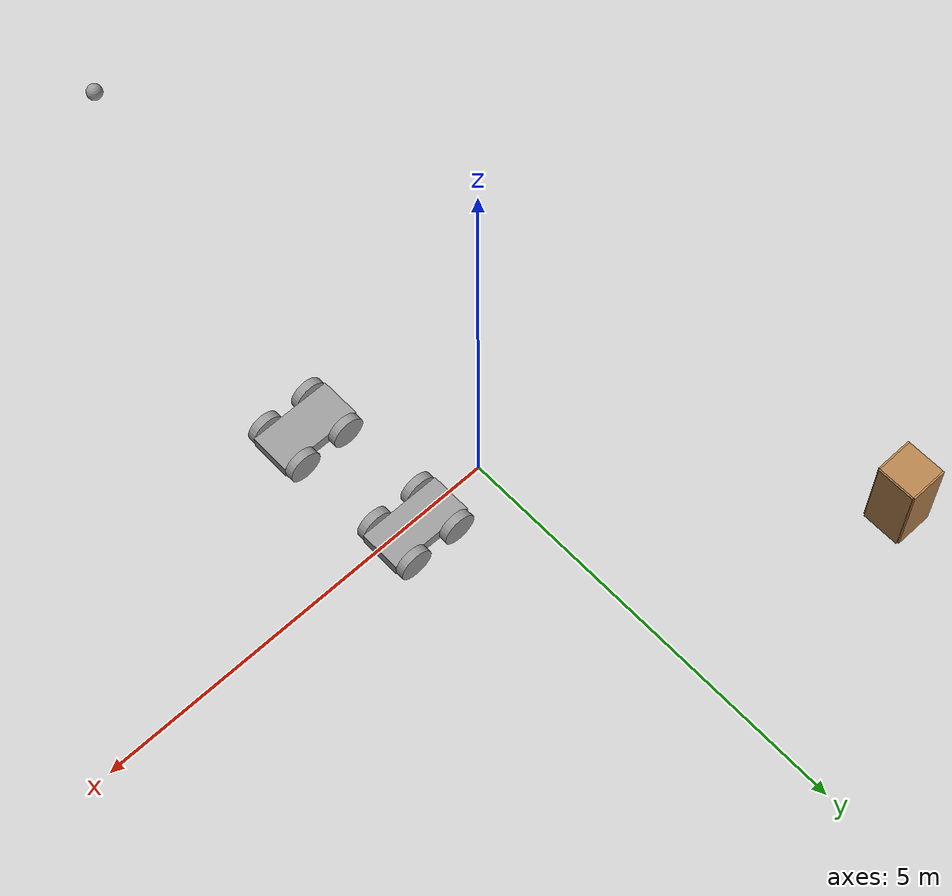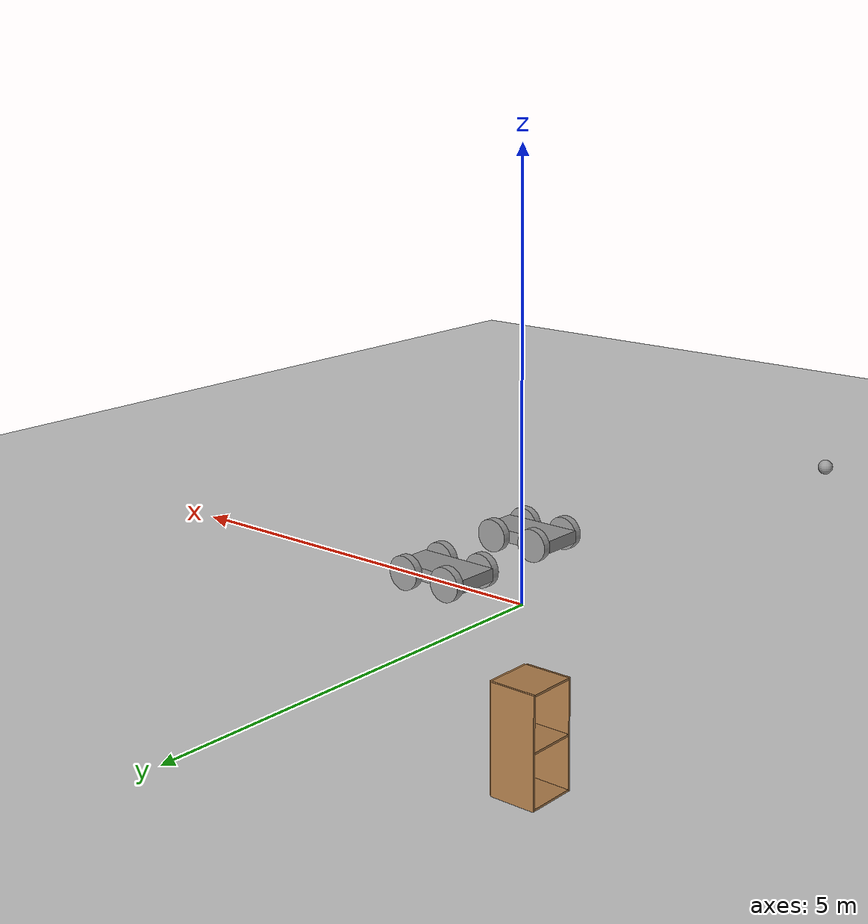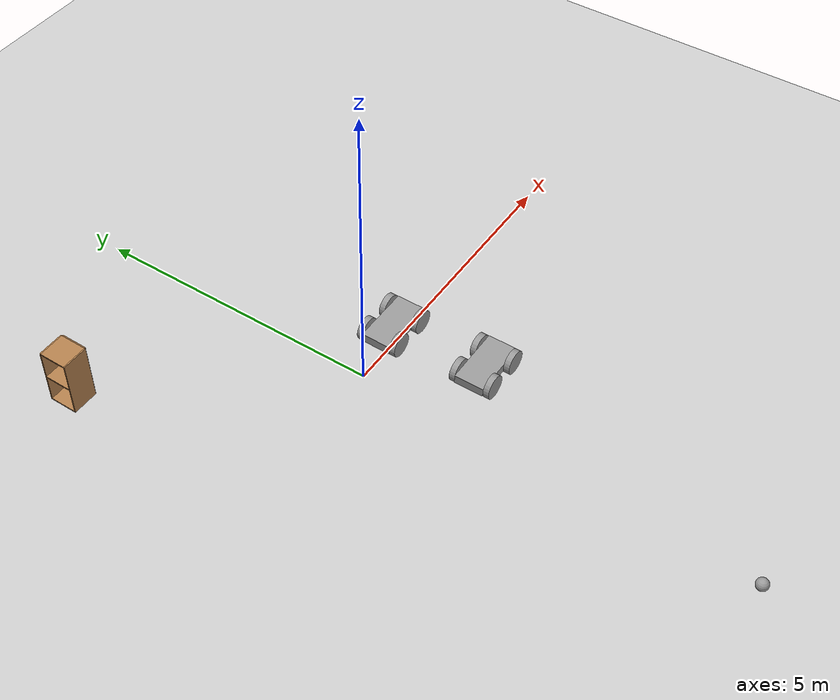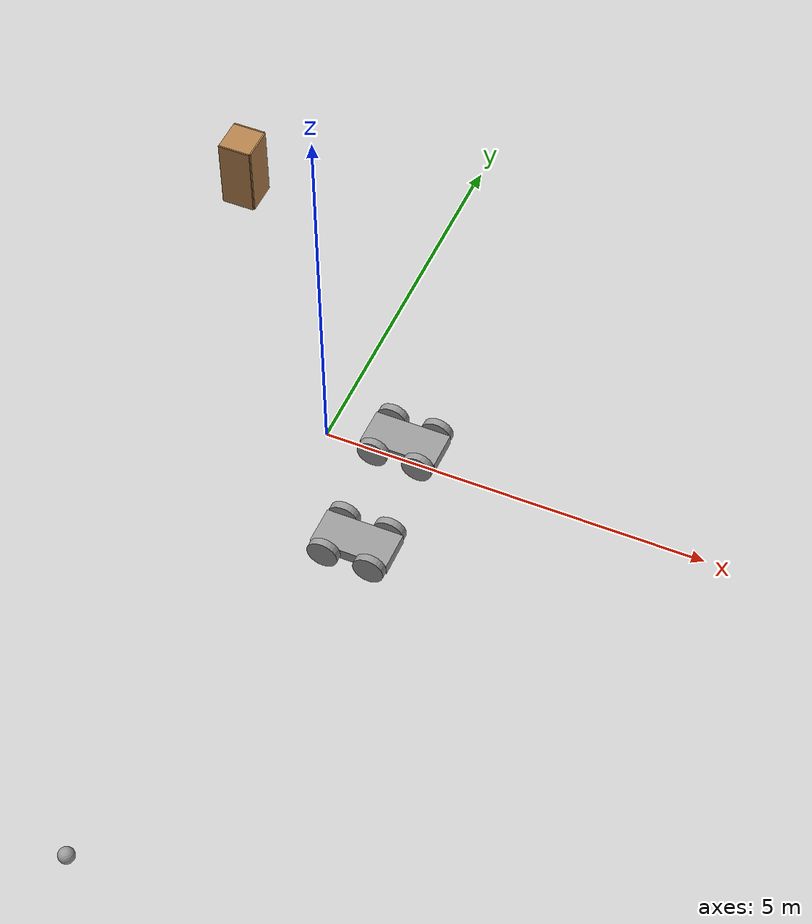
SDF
<sdf version="1.6">
 <world name="default">
  <model name="ground_plane">
   <static>1</static>
   <link name="link">
    <collision name="collision">
     <geometry><plane><normal>0 0 1</normal><size>100 100</size></plane></geometry>
     <surface>
      <contact><collide_bitmask>65535</collide_bitmask></contact>
      <friction><ode><mu>100</mu><mu2>50</mu2></ode></friction>
     </surface>
    </collision>
    <visual name="visual">
     <cast_shadows>0</cast_shadows>
     <geometry><plane><normal>0 0 1</normal><size>100 100</size></plane></geometry>
     <material>
      <script><uri>file://media/materials/scripts/gazebo.material</uri><name>Gazebo/Grey</name></script>
     </material>
    </visual>
   </link>
  </model>
  <model name="mobilerobot">
   <link name="link_0_clone">
    <pose>-0.073079 -0.805371 0.200133 1.5707 -0 0</pose>
    <inertial>
     <mass>1</mass>
     <inertia><ixx>0.145833</ixx><ixy>0</ixy><ixz>0</ixz><iyy>0.145833</iyy><iyz>0</iyz><izz>0.125</izz></inertia>
    </inertial>
    <visual name="visual">
     <geometry><cylinder><radius>0.2</radius><length>0.1</length></cylinder></geometry>
     <material>
      <lighting>1</lighting>
      <script><uri>file://media/materials/scripts/gazebo.material</uri><name>Gazebo/Grey</name></script>
      <shader type="pixel"><normal_map>__default__</normal_map></shader>
      <ambient>0.3 0.3 0.3 1</ambient>
      <diffuse>0.7 0.7 0.7 1</diffuse>
      <specular>0.01 0.01 0.01 1</specular>
      <emissive>0 0 0 1</emissive>
     </material>
    </visual>
    <collision name="collision">
     <geometry><cylinder><radius>0.2</radius><length>0.1</length></cylinder></geometry>
     <surface>
      <friction>
       <ode><mu>1</mu><mu2>1</mu2><fdir1>0 0 0</fdir1><slip1>0</slip1><slip2>0</slip2></ode>
       <torsional>
        <coefficient>1</coefficient>
        <patch_radius>0</patch_radius>
        <surface_radius>0</surface_radius>
        <use_patch_radius>1</use_patch_radius>
        <ode><slip>0</slip></ode>
       </torsional>
      </friction>
      <bounce><restitution_coefficient>0</restitution_coefficient><threshold>1e+06</threshold></bounce>
      <contact>
       <collide_without_contact>0</collide_without_contact>
       <collide_without_contact_bitmask>1</collide_without_contact_bitmask>
       <collide_bitmask>1</collide_bitmask>
       <ode>
        <soft_cfm>0</soft_cfm>
        <soft_erp>0.2</soft_erp>
        <kp>1e+13</kp>
        <kd>1</kd>
        <max_vel>0.01</max_vel>
        <min_depth>0</min_depth>
       </ode>
       <bullet>
        <split_impulse>1</split_impulse>
        <split_impulse_penetration_threshold>-0.01</split_impulse_penetration_threshold>
        <soft_cfm>0</soft_cfm>
        <soft_erp>0.2</soft_erp>
        <kp>1e+13</kp>
        <kd>1</kd>
       </bullet>
      </contact>
     </surface>
    </collision>
   </link>
   <link name="link_0_clone_0">
    <pose>0.526921 -0.805371 0.200133 1.5707 -0 0</pose>
    <inertial>
     <mass>1</mass>
     <inertia><ixx>0.145833</ixx><ixy>0</ixy><ixz>0</ixz><iyy>0.145833</iyy><iyz>0</iyz><izz>0.125</izz></inertia>
    </inertial>
    <visual name="visual">
     <geometry><cylinder><radius>0.2</radius><length>0.1</length></cylinder></geometry>
     <material>
      <lighting>1</lighting>
      <script><uri>file://media/materials/scripts/gazebo.material</uri><name>Gazebo/Grey</name></script>
      <shader type="pixel"><normal_map>__default__</normal_map></shader>
      <ambient>0.3 0.3 0.3 1</ambient>
      <diffuse>0.7 0.7 0.7 1</diffuse>
      <specular>0.01 0.01 0.01 1</specular>
      <emissive>0 0 0 1</emissive>
     </material>
    </visual>
    <collision name="collision">
     <geometry><cylinder><radius>0.2</radius><length>0.1</length></cylinder></geometry>
     <surface>
      <friction>
       <ode><mu>1</mu><mu2>1</mu2><fdir1>0 0 0</fdir1><slip1>0</slip1><slip2>0</slip2></ode>
       <torsional>
        <coefficient>1</coefficient>
        <patch_radius>0</patch_radius>
        <surface_radius>0</surface_radius>
        <use_patch_radius>1</use_patch_radius>
        <ode><slip>0</slip></ode>
       </torsional>
      </friction>
      <bounce><restitution_coefficient>0</restitution_coefficient><threshold>1e+06</threshold></bounce>
      <contact>
       <collide_without_contact>0</collide_without_contact>
       <collide_without_contact_bitmask>1</collide_without_contact_bitmask>
       <collide_bitmask>1</collide_bitmask>
       <ode>
        <soft_cfm>0</soft_cfm>
        <soft_erp>0.2</soft_erp>
        <kp>1e+13</kp>
        <kd>1</kd>
        <max_vel>0.01</max_vel>
        <min_depth>0</min_depth>
       </ode>
       <bullet>
        <split_impulse>1</split_impulse>
        <split_impulse_penetration_threshold>-0.01</split_impulse_penetration_threshold>
        <soft_cfm>0</soft_cfm>
        <soft_erp>0.2</soft_erp>
        <kp>1e+13</kp>
        <kd>1</kd>
       </bullet>
      </contact>
     </surface>
    </collision>
   </link>
   <link name="link_0_clone_1">
    <pose>0.526921 -0.205332 0.200133 1.5707 -0 0</pose>
    <inertial>
     <mass>1</mass>
     <inertia><ixx>0.145833</ixx><ixy>0</ixy><ixz>0</ixz><iyy>0.145833</iyy><iyz>0</iyz><izz>0.125</izz></inertia>
    </inertial>
    <visual name="visual">
     <geometry><cylinder><radius>0.2</radius><length>0.1</length></cylinder></geometry>
     <material>
      <lighting>1</lighting>
      <script><uri>file://media/materials/scripts/gazebo.material</uri><name>Gazebo/Grey</name></script>
      <shader type="pixel"><normal_map>__default__</normal_map></shader>
      <ambient>0.3 0.3 0.3 1</ambient>
      <diffuse>0.7 0.7 0.7 1</diffuse>
      <specular>0.01 0.01 0.01 1</specular>
      <emissive>0 0 0 1</emissive>
     </material>
    </visual>
    <collision name="collision">
     <geometry><cylinder><radius>0.2</radius><length>0.1</length></cylinder></geometry>
     <surface>
      <friction>
       <ode><mu>1</mu><mu2>1</mu2><fdir1>0 0 0</fdir1><slip1>0</slip1><slip2>0</slip2></ode>
       <torsional>
        <coefficient>1</coefficient>
        <patch_radius>0</patch_radius>
        <surface_radius>0</surface_radius>
        <use_patch_radius>1</use_patch_radius>
        <ode><slip>0</slip></ode>
       </torsional>
      </friction>
      <bounce><restitution_coefficient>0</restitution_coefficient><threshold>1e+06</threshold></bounce>
      <contact>
       <collide_without_contact>0</collide_without_contact>
       <collide_without_contact_bitmask>1</collide_without_contact_bitmask>
       <collide_bitmask>1</collide_bitmask>
       <ode>
        <soft_cfm>0</soft_cfm>
        <soft_erp>0.2</soft_erp>
        <kp>1e+13</kp>
        <kd>1</kd>
        <max_vel>0.01</max_vel>
        <min_depth>0</min_depth>
       </ode>
       <bullet>
        <split_impulse>1</split_impulse>
        <split_impulse_penetration_threshold>-0.01</split_impulse_penetration_threshold>
        <soft_cfm>0</soft_cfm>
        <soft_erp>0.2</soft_erp>
        <kp>1e+13</kp>
        <kd>1</kd>
       </bullet>
      </contact>
     </surface>
    </collision>
   </link>
   <link name="link_0_clone_1_clone">
    <pose>-0.073079 -0.205332 0.200133 1.5707 -0 0</pose>
    <inertial>
     <mass>1</mass>
     <inertia><ixx>0.145833</ixx><ixy>0</ixy><ixz>0</ixz><iyy>0.145833</iyy><iyz>0</iyz><izz>0.125</izz></inertia>
    </inertial>
    <visual name="visual">
     <geometry><cylinder><radius>0.2</radius><length>0.1</length></cylinder></geometry>
     <material>
      <lighting>1</lighting>
      <script><uri>file://media/materials/scripts/gazebo.material</uri><name>Gazebo/Grey</name></script>
      <shader type="pixel"><normal_map>__default__</normal_map></shader>
      <ambient>0.3 0.3 0.3 1</ambient>
      <diffuse>0.7 0.7 0.7 1</diffuse>
      <specular>0.01 0.01 0.01 1</specular>
      <emissive>0 0 0 1</emissive>
     </material>
    </visual>
    <collision name="collision">
     <geometry><cylinder><radius>0.2</radius><length>0.1</length></cylinder></geometry>
     <surface>
      <friction>
       <ode><mu>1</mu><mu2>1</mu2><fdir1>0 0 0</fdir1><slip1>0</slip1><slip2>0</slip2></ode>
       <torsional>
        <coefficient>1</coefficient>
        <patch_radius>0</patch_radius>
        <surface_radius>0</surface_radius>
        <use_patch_radius>1</use_patch_radius>
        <ode><slip>0</slip></ode>
       </torsional>
      </friction>
      <bounce><restitution_coefficient>0</restitution_coefficient><threshold>1e+06</threshold></bounce>
      <contact>
       <collide_without_contact>0</collide_without_contact>
       <collide_without_contact_bitmask>1</collide_without_contact_bitmask>
       <collide_bitmask>1</collide_bitmask>
       <ode>
        <soft_cfm>0</soft_cfm>
        <soft_erp>0.2</soft_erp>
        <kp>1e+13</kp>
        <kd>1</kd>
        <max_vel>0.01</max_vel>
        <min_depth>0</min_depth>
       </ode>
       <bullet>
        <split_impulse>1</split_impulse>
        <split_impulse_penetration_threshold>-0.01</split_impulse_penetration_threshold>
        <soft_cfm>0</soft_cfm>
        <soft_erp>0.2</soft_erp>
        <kp>1e+13</kp>
        <kd>1</kd>
       </bullet>
      </contact>
     </surface>
    </collision>
   </link>
   <link name="link_1">
    <pose>0.226921 -0.505351 0.200133 0 -0 0</pose>
    <inertial>
     <mass>1</mass>
     <inertia>
      <ixx>0.166667</ixx>
      <ixy>0</ixy>
      <ixz>0</ixz>
      <iyy>0.166667</iyy>
      <iyz>0</iyz>
      <izz>0.166667</izz>
     </inertia>
    </inertial>
    <visual name="visual">
     <geometry><box><size>1 0.5 0.15</size></box></geometry>
     <material>
      <lighting>1</lighting>
      <script><uri>file://media/materials/scripts/gazebo.material</uri><name>Gazebo/Grey</name></script>
      <shader type="pixel"><normal_map>__default__</normal_map></shader>
      <ambient>0.3 0.3 0.3 1</ambient>
      <diffuse>0.7 0.7 0.7 1</diffuse>
      <specular>0.01 0.01 0.01 1</specular>
      <emissive>0 0 0 1</emissive>
     </material>
    </visual>
    <collision name="collision">
     <geometry><box><size>1 0.5 0.15</size></box></geometry>
     <surface>
      <friction>
       <ode><mu>1</mu><mu2>1</mu2><fdir1>0 0 0</fdir1><slip1>0</slip1><slip2>0</slip2></ode>
       <torsional>
        <coefficient>1</coefficient>
        <patch_radius>0</patch_radius>
        <surface_radius>0</surface_radius>
        <use_patch_radius>1</use_patch_radius>
        <ode><slip>0</slip></ode>
       </torsional>
      </friction>
      <bounce><restitution_coefficient>0</restitution_coefficient><threshold>1e+06</threshold></bounce>
      <contact>
       <collide_without_contact>0</collide_without_contact>
       <collide_without_contact_bitmask>1</collide_without_contact_bitmask>
       <collide_bitmask>1</collide_bitmask>
       <ode>
        <soft_cfm>0</soft_cfm>
        <soft_erp>0.2</soft_erp>
        <kp>1e+13</kp>
        <kd>1</kd>
        <max_vel>0.01</max_vel>
        <min_depth>0</min_depth>
       </ode>
       <bullet>
        <split_impulse>1</split_impulse>
        <split_impulse_penetration_threshold>-0.01</split_impulse_penetration_threshold>
        <soft_cfm>0</soft_cfm>
        <soft_erp>0.2</soft_erp>
        <kp>1e+13</kp>
        <kd>1</kd>
       </bullet>
      </contact>
     </surface>
    </collision>
   </link>
   <joint name="link_1_JOINT_5" type="revolute">
    <parent>link_1</parent>
    <child>link_0_clone</child>
    <axis>
     <xyz>0 0 1</xyz>
     <use_parent_model_frame>0</use_parent_model_frame>
     <limit>
      <lower>-1.79769e+308</lower>
      <upper>1.79769e+308</upper>
      <effort>-1</effort>
      <velocity>-1</velocity>
     </limit>
     <dynamics>
      <spring_reference>0</spring_reference>
      <spring_stiffness>0</spring_stiffness>
      <damping>0</damping>
     </dynamics>
    </axis>
    <physics>
     <ode><limit><cfm>0</cfm><erp>0.2</erp></limit><suspension><cfm>0</cfm><erp>0.2</erp></suspension></ode>
    </physics>
   </joint>
   <joint name="link_1_JOINT_6" type="revolute">
    <parent>link_1</parent>
    <child>link_0_clone_0</child>
    <axis>
     <xyz>0 0 1</xyz>
     <use_parent_model_frame>0</use_parent_model_frame>
     <limit>
      <lower>-1.79769e+308</lower>
      <upper>1.79769e+308</upper>
      <effort>-1</effort>
      <velocity>-1</velocity>
     </limit>
     <dynamics>
      <spring_reference>0</spring_reference>
      <spring_stiffness>0</spring_stiffness>
      <damping>0</damping>
     </dynamics>
    </axis>
    <physics>
     <ode><limit><cfm>0</cfm><erp>0.2</erp></limit><suspension><cfm>0</cfm><erp>0.2</erp></suspension></ode>
    </physics>
   </joint>
   <joint name="link_1_JOINT_7" type="revolute">
    <parent>link_1</parent>
    <child>link_0_clone_1</child>
    <axis>
     <xyz>0 0 1</xyz>
     <use_parent_model_frame>0</use_parent_model_frame>
     <limit>
      <lower>-1.79769e+308</lower>
      <upper>1.79769e+308</upper>
      <effort>-1</effort>
      <velocity>-1</velocity>
     </limit>
     <dynamics>
      <spring_reference>0</spring_reference>
      <spring_stiffness>0</spring_stiffness>
      <damping>0</damping>
     </dynamics>
    </axis>
    <physics>
     <ode><limit><cfm>0</cfm><erp>0.2</erp></limit><suspension><cfm>0</cfm><erp>0.2</erp></suspension></ode>
    </physics>
   </joint>
   <joint name="link_1_JOINT_9" type="revolute">
    <parent>link_1</parent>
    <child>link_0_clone_1_clone</child>
    <axis>
     <xyz>0 0 1</xyz>
     <use_parent_model_frame>0</use_parent_model_frame>
     <limit>
      <lower>-1.79769e+308</lower>
      <upper>1.79769e+308</upper>
      <effort>-1</effort>
      <velocity>-1</velocity>
     </limit>
     <dynamics>
      <spring_reference>0</spring_reference>
      <spring_stiffness>0</spring_stiffness>
      <damping>0</damping>
     </dynamics>
    </axis>
    <physics>
     <ode><limit><cfm>0</cfm><erp>0.2</erp></limit><suspension><cfm>0</cfm><erp>0.2</erp></suspension></ode>
    </physics>
   </joint>
   <static>0</static>
   <pose>0.872249 -1.01321 -5.5e-05 -0 -0.000999 0.000954</pose>
  </model>
  <model name="mobilerobot_0">
   <link name="link_0_clone">
    <pose>-0.073079 -0.805371 0.200133 1.5707 -0 0</pose>
    <inertial>
     <mass>1</mass>
     <inertia><ixx>0.145833</ixx><ixy>0</ixy><ixz>0</ixz><iyy>0.145833</iyy><iyz>0</iyz><izz>0.125</izz></inertia>
    </inertial>
    <visual name="visual">
     <geometry><cylinder><radius>0.2</radius><length>0.1</length></cylinder></geometry>
     <material>
      <lighting>1</lighting>
      <script><uri>file://media/materials/scripts/gazebo.material</uri><name>Gazebo/Grey</name></script>
      <shader type="pixel"><normal_map>__default__</normal_map></shader>
      <ambient>0.3 0.3 0.3 1</ambient>
      <diffuse>0.7 0.7 0.7 1</diffuse>
      <specular>0.01 0.01 0.01 1</specular>
      <emissive>0 0 0 1</emissive>
     </material>
    </visual>
    <collision name="collision">
     <geometry><cylinder><radius>0.2</radius><length>0.1</length></cylinder></geometry>
     <surface>
      <friction>
       <ode><mu>1</mu><mu2>1</mu2><fdir1>0 0 0</fdir1><slip1>0</slip1><slip2>0</slip2></ode>
       <torsional>
        <coefficient>1</coefficient>
        <patch_radius>0</patch_radius>
        <surface_radius>0</surface_radius>
        <use_patch_radius>1</use_patch_radius>
        <ode><slip>0</slip></ode>
       </torsional>
      </friction>
      <bounce><restitution_coefficient>0</restitution_coefficient><threshold>1e+06</threshold></bounce>
      <contact>
       <collide_without_contact>0</collide_without_contact>
       <collide_without_contact_bitmask>1</collide_without_contact_bitmask>
       <collide_bitmask>1</collide_bitmask>
       <ode>
        <soft_cfm>0</soft_cfm>
        <soft_erp>0.2</soft_erp>
        <kp>1e+13</kp>
        <kd>1</kd>
        <max_vel>0.01</max_vel>
        <min_depth>0</min_depth>
       </ode>
       <bullet>
        <split_impulse>1</split_impulse>
        <split_impulse_penetration_threshold>-0.01</split_impulse_penetration_threshold>
        <soft_cfm>0</soft_cfm>
        <soft_erp>0.2</soft_erp>
        <kp>1e+13</kp>
        <kd>1</kd>
       </bullet>
      </contact>
     </surface>
    </collision>
   </link>
   <link name="link_0_clone_0">
    <pose>0.526921 -0.805371 0.200133 1.5707 -0 0</pose>
    <inertial>
     <mass>1</mass>
     <inertia><ixx>0.145833</ixx><ixy>0</ixy><ixz>0</ixz><iyy>0.145833</iyy><iyz>0</iyz><izz>0.125</izz></inertia>
    </inertial>
    <visual name="visual">
     <geometry><cylinder><radius>0.2</radius><length>0.1</length></cylinder></geometry>
     <material>
      <lighting>1</lighting>
      <script><uri>file://media/materials/scripts/gazebo.material</uri><name>Gazebo/Grey</name></script>
      <shader type="pixel"><normal_map>__default__</normal_map></shader>
      <ambient>0.3 0.3 0.3 1</ambient>
      <diffuse>0.7 0.7 0.7 1</diffuse>
      <specular>0.01 0.01 0.01 1</specular>
      <emissive>0 0 0 1</emissive>
     </material>
    </visual>
    <collision name="collision">
     <geometry><cylinder><radius>0.2</radius><length>0.1</length></cylinder></geometry>
     <surface>
      <friction>
       <ode><mu>1</mu><mu2>1</mu2><fdir1>0 0 0</fdir1><slip1>0</slip1><slip2>0</slip2></ode>
       <torsional>
        <coefficient>1</coefficient>
        <patch_radius>0</patch_radius>
        <surface_radius>0</surface_radius>
        <use_patch_radius>1</use_patch_radius>
        <ode><slip>0</slip></ode>
       </torsional>
      </friction>
      <bounce><restitution_coefficient>0</restitution_coefficient><threshold>1e+06</threshold></bounce>
      <contact>
       <collide_without_contact>0</collide_without_contact>
       <collide_without_contact_bitmask>1</collide_without_contact_bitmask>
       <collide_bitmask>1</collide_bitmask>
       <ode>
        <soft_cfm>0</soft_cfm>
        <soft_erp>0.2</soft_erp>
        <kp>1e+13</kp>
        <kd>1</kd>
        <max_vel>0.01</max_vel>
        <min_depth>0</min_depth>
       </ode>
       <bullet>
        <split_impulse>1</split_impulse>
        <split_impulse_penetration_threshold>-0.01</split_impulse_penetration_threshold>
        <soft_cfm>0</soft_cfm>
        <soft_erp>0.2</soft_erp>
        <kp>1e+13</kp>
        <kd>1</kd>
       </bullet>
      </contact>
     </surface>
    </collision>
   </link>
   <link name="link_0_clone_1">
    <pose>0.526921 -0.205332 0.200133 1.5707 -0 0</pose>
    <inertial>
     <mass>1</mass>
     <inertia><ixx>0.145833</ixx><ixy>0</ixy><ixz>0</ixz><iyy>0.145833</iyy><iyz>0</iyz><izz>0.125</izz></inertia>
    </inertial>
    <visual name="visual">
     <geometry><cylinder><radius>0.2</radius><length>0.1</length></cylinder></geometry>
     <material>
      <lighting>1</lighting>
      <script><uri>file://media/materials/scripts/gazebo.material</uri><name>Gazebo/Grey</name></script>
      <shader type="pixel"><normal_map>__default__</normal_map></shader>
      <ambient>0.3 0.3 0.3 1</ambient>
      <diffuse>0.7 0.7 0.7 1</diffuse>
      <specular>0.01 0.01 0.01 1</specular>
      <emissive>0 0 0 1</emissive>
     </material>
    </visual>
    <collision name="collision">
     <geometry><cylinder><radius>0.2</radius><length>0.1</length></cylinder></geometry>
     <surface>
      <friction>
       <ode><mu>1</mu><mu2>1</mu2><fdir1>0 0 0</fdir1><slip1>0</slip1><slip2>0</slip2></ode>
       <torsional>
        <coefficient>1</coefficient>
        <patch_radius>0</patch_radius>
        <surface_radius>0</surface_radius>
        <use_patch_radius>1</use_patch_radius>
        <ode><slip>0</slip></ode>
       </torsional>
      </friction>
      <bounce><restitution_coefficient>0</restitution_coefficient><threshold>1e+06</threshold></bounce>
      <contact>
       <collide_without_contact>0</collide_without_contact>
       <collide_without_contact_bitmask>1</collide_without_contact_bitmask>
       <collide_bitmask>1</collide_bitmask>
       <ode>
        <soft_cfm>0</soft_cfm>
        <soft_erp>0.2</soft_erp>
        <kp>1e+13</kp>
        <kd>1</kd>
        <max_vel>0.01</max_vel>
        <min_depth>0</min_depth>
       </ode>
       <bullet>
        <split_impulse>1</split_impulse>
        <split_impulse_penetration_threshold>-0.01</split_impulse_penetration_threshold>
        <soft_cfm>0</soft_cfm>
        <soft_erp>0.2</soft_erp>
        <kp>1e+13</kp>
        <kd>1</kd>
       </bullet>
      </contact>
     </surface>
    </collision>
   </link>
   <link name="link_0_clone_1_clone">
    <pose>-0.073079 -0.205332 0.200133 1.5707 -0 0</pose>
    <inertial>
     <mass>1</mass>
     <inertia><ixx>0.145833</ixx><ixy>0</ixy><ixz>0</ixz><iyy>0.145833</iyy><iyz>0</iyz><izz>0.125</izz></inertia>
    </inertial>
    <visual name="visual">
     <geometry><cylinder><radius>0.2</radius><length>0.1</length></cylinder></geometry>
     <material>
      <lighting>1</lighting>
      <script><uri>file://media/materials/scripts/gazebo.material</uri><name>Gazebo/Grey</name></script>
      <shader type="pixel"><normal_map>__default__</normal_map></shader>
      <ambient>0.3 0.3 0.3 1</ambient>
      <diffuse>0.7 0.7 0.7 1</diffuse>
      <specular>0.01 0.01 0.01 1</specular>
      <emissive>0 0 0 1</emissive>
     </material>
    </visual>
    <collision name="collision">
     <geometry><cylinder><radius>0.2</radius><length>0.1</length></cylinder></geometry>
     <surface>
      <friction>
       <ode><mu>1</mu><mu2>1</mu2><fdir1>0 0 0</fdir1><slip1>0</slip1><slip2>0</slip2></ode>
       <torsional>
        <coefficient>1</coefficient>
        <patch_radius>0</patch_radius>
        <surface_radius>0</surface_radius>
        <use_patch_radius>1</use_patch_radius>
        <ode><slip>0</slip></ode>
       </torsional>
      </friction>
      <bounce><restitution_coefficient>0</restitution_coefficient><threshold>1e+06</threshold></bounce>
      <contact>
       <collide_without_contact>0</collide_without_contact>
       <collide_without_contact_bitmask>1</collide_without_contact_bitmask>
       <collide_bitmask>1</collide_bitmask>
       <ode>
        <soft_cfm>0</soft_cfm>
        <soft_erp>0.2</soft_erp>
        <kp>1e+13</kp>
        <kd>1</kd>
        <max_vel>0.01</max_vel>
        <min_depth>0</min_depth>
       </ode>
       <bullet>
        <split_impulse>1</split_impulse>
        <split_impulse_penetration_threshold>-0.01</split_impulse_penetration_threshold>
        <soft_cfm>0</soft_cfm>
        <soft_erp>0.2</soft_erp>
        <kp>1e+13</kp>
        <kd>1</kd>
       </bullet>
      </contact>
     </surface>
    </collision>
   </link>
   <link name="link_1">
    <pose>0.226921 -0.505351 0.200133 0 -0 0</pose>
    <inertial>
     <mass>1</mass>
     <inertia>
      <ixx>0.166667</ixx>
      <ixy>0</ixy>
      <ixz>0</ixz>
      <iyy>0.166667</iyy>
      <iyz>0</iyz>
      <izz>0.166667</izz>
     </inertia>
    </inertial>
    <visual name="visual">
     <geometry><box><size>1 0.5 0.15</size></box></geometry>
     <material>
      <lighting>1</lighting>
      <script><uri>file://media/materials/scripts/gazebo.material</uri><name>Gazebo/Grey</name></script>
      <shader type="pixel"><normal_map>__default__</normal_map></shader>
      <ambient>0.3 0.3 0.3 1</ambient>
      <diffuse>0.7 0.7 0.7 1</diffuse>
      <specular>0.01 0.01 0.01 1</specular>
      <emissive>0 0 0 1</emissive>
     </material>
    </visual>
    <collision name="collision">
     <geometry><box><size>1 0.5 0.15</size></box></geometry>
     <surface>
      <friction>
       <ode><mu>1</mu><mu2>1</mu2><fdir1>0 0 0</fdir1><slip1>0</slip1><slip2>0</slip2></ode>
       <torsional>
        <coefficient>1</coefficient>
        <patch_radius>0</patch_radius>
        <surface_radius>0</surface_radius>
        <use_patch_radius>1</use_patch_radius>
        <ode><slip>0</slip></ode>
       </torsional>
      </friction>
      <bounce><restitution_coefficient>0</restitution_coefficient><threshold>1e+06</threshold></bounce>
      <contact>
       <collide_without_contact>0</collide_without_contact>
       <collide_without_contact_bitmask>1</collide_without_contact_bitmask>
       <collide_bitmask>1</collide_bitmask>
       <ode>
        <soft_cfm>0</soft_cfm>
        <soft_erp>0.2</soft_erp>
        <kp>1e+13</kp>
        <kd>1</kd>
        <max_vel>0.01</max_vel>
        <min_depth>0</min_depth>
       </ode>
       <bullet>
        <split_impulse>1</split_impulse>
        <split_impulse_penetration_threshold>-0.01</split_impulse_penetration_threshold>
        <soft_cfm>0</soft_cfm>
        <soft_erp>0.2</soft_erp>
        <kp>1e+13</kp>
        <kd>1</kd>
       </bullet>
      </contact>
     </surface>
    </collision>
   </link>
   <joint name="link_1_JOINT_5" type="revolute">
    <parent>link_1</parent>
    <child>link_0_clone</child>
    <axis>
     <xyz>0 0 1</xyz>
     <use_parent_model_frame>0</use_parent_model_frame>
     <limit>
      <lower>-1.79769e+308</lower>
      <upper>1.79769e+308</upper>
      <effort>-1</effort>
      <velocity>-1</velocity>
     </limit>
     <dynamics>
      <spring_reference>0</spring_reference>
      <spring_stiffness>0</spring_stiffness>
      <damping>0</damping>
     </dynamics>
    </axis>
    <physics>
     <ode><limit><cfm>0</cfm><erp>0.2</erp></limit><suspension><cfm>0</cfm><erp>0.2</erp></suspension></ode>
    </physics>
   </joint>
   <joint name="link_1_JOINT_6" type="revolute">
    <parent>link_1</parent>
    <child>link_0_clone_0</child>
    <axis>
     <xyz>0 0 1</xyz>
     <use_parent_model_frame>0</use_parent_model_frame>
     <limit>
      <lower>-1.79769e+308</lower>
      <upper>1.79769e+308</upper>
      <effort>-1</effort>
      <velocity>-1</velocity>
     </limit>
     <dynamics>
      <spring_reference>0</spring_reference>
      <spring_stiffness>0</spring_stiffness>
      <damping>0</damping>
     </dynamics>
    </axis>
    <physics>
     <ode><limit><cfm>0</cfm><erp>0.2</erp></limit><suspension><cfm>0</cfm><erp>0.2</erp></suspension></ode>
    </physics>
   </joint>
   <joint name="link_1_JOINT_7" type="revolute">
    <parent>link_1</parent>
    <child>link_0_clone_1</child>
    <axis>
     <xyz>0 0 1</xyz>
     <use_parent_model_frame>0</use_parent_model_frame>
     <limit>
      <lower>-1.79769e+308</lower>
      <upper>1.79769e+308</upper>
      <effort>-1</effort>
      <velocity>-1</velocity>
     </limit>
     <dynamics>
      <spring_reference>0</spring_reference>
      <spring_stiffness>0</spring_stiffness>
      <damping>0</damping>
     </dynamics>
    </axis>
    <physics>
     <ode><limit><cfm>0</cfm><erp>0.2</erp></limit><suspension><cfm>0</cfm><erp>0.2</erp></suspension></ode>
    </physics>
   </joint>
   <joint name="link_1_JOINT_9" type="revolute">
    <parent>link_1</parent>
    <child>link_0_clone_1_clone</child>
    <axis>
     <xyz>0 0 1</xyz>
     <use_parent_model_frame>0</use_parent_model_frame>
     <limit>
      <lower>-1.79769e+308</lower>
      <upper>1.79769e+308</upper>
      <effort>-1</effort>
      <velocity>-1</velocity>
     </limit>
     <dynamics>
      <spring_reference>0</spring_reference>
      <spring_stiffness>0</spring_stiffness>
      <damping>0</damping>
     </dynamics>
    </axis>
    <physics>
     <ode><limit><cfm>0</cfm><erp>0.2</erp></limit><suspension><cfm>0</cfm><erp>0.2</erp></suspension></ode>
    </physics>
   </joint>
   <static>0</static>
   <pose>0.791699 0.628682 0.000193 -3e-06 -0.004379 -0.004846</pose>
  </model>
  <model name="cabinet">
   <static>1</static>
   <link name="cabinet_bottom_plate">
    <inertial>
     <pose>0 0 -1 0 -0 0</pose>
     <inertia><ixx>2.05</ixx><ixy>0</ixy><ixz>0</ixz><iyy>2.05</iyy><iyz>0</iyz><izz>2.05</izz></inertia>
     <mass>25</mass>
    </inertial>
    <collision name="cabinet_bottom_plate_geom">
     <pose>0 0 0.01 0 -0 0</pose>
     <geometry><box><size>0.45 0.45 0.02</size></box></geometry>
    </collision>
    <visual name="cabinet_bottom_plate_geom_visual">
     <pose>0 0 0.01 0 -0 0</pose>
     <geometry><box><size>0.45 0.45 0.02</size></box></geometry>
     <material>
      <script><uri>file://media/materials/scripts/gazebo.material</uri><name>Gazebo/Wood</name></script>
     </material>
    </visual>
    <collision name="cabinet_bottom_plate_geom_cabinet_back_plate">
     <pose>0.235 0 0.51 0 -0 0</pose>
     <geometry><box><size>0.02 0.45 1.02</size></box></geometry>
    </collision>
    <visual name="cabinet_bottom_plate_geom_cabinet_back_plate_visual">
     <pose>0.235 0 0.51 0 -0 0</pose>
     <geometry><box><size>0.02 0.45 1.02</size></box></geometry>
     <material>
      <script><uri>file://media/materials/scripts/gazebo.material</uri><name>Gazebo/Wood</name></script>
     </material>
    </visual>
    <collision name="cabinet_bottom_plate_geom_cabinet_left_plate">
     <pose>0 0.235 0.51 0 -0 0</pose>
     <geometry><box><size>0.45 0.02 1.02</size></box></geometry>
    </collision>
    <visual name="cabinet_bottom_plate_geom_cabinet_left_plate_visual">
     <pose>0 0.235 0.51 0 -0 0</pose>
     <geometry><box><size>0.45 0.02 1.02</size></box></geometry>
     <material>
      <script><uri>file://media/materials/scripts/gazebo.material</uri><name>Gazebo/Wood</name></script>
     </material>
    </visual>
    <collision name="cabinet_bottom_plate_geom_cabinet_middle_plate">
     <pose>0 0 0.51 0 -0 0</pose>
     <geometry><box><size>0.45 0.45 0.02</size></box></geometry>
    </collision>
    <visual name="cabinet_bottom_plate_geom_cabinet_middle_plate_visual">
     <pose>0 0 0.51 0 -0 0</pose>
     <geometry><box><size>0.45 0.45 0.02</size></box></geometry>
     <material>
      <script><uri>file://media/materials/scripts/gazebo.material</uri><name>Gazebo/Wood</name></script>
     </material>
    </visual>
    <collision name="cabinet_bottom_plate_geom_cabinet_right_plate">
     <pose>0 -0.235 0.51 0 -0 0</pose>
     <geometry><box><size>0.45 0.02 1.02</size></box></geometry>
    </collision>
    <visual name="cabinet_bottom_plate_geom_cabinet_right_plate_visual">
     <pose>0 -0.235 0.51 0 -0 0</pose>
     <geometry><box><size>0.45 0.02 1.02</size></box></geometry>
     <material>
      <script><uri>file://media/materials/scripts/gazebo.material</uri><name>Gazebo/Wood</name></script>
     </material>
    </visual>
    <collision name="cabinet_bottom_plate_geom_cabinet_top_plate">
     <pose>0 0 1.01 0 -0 0</pose>
     <geometry><box><size>0.45 0.45 0.02</size></box></geometry>
    </collision>
    <visual name="cabinet_bottom_plate_geom_cabinet_top_plate_visual">
     <pose>0 0 1.01 0 -0 0</pose>
     <geometry><box><size>0.45 0.45 0.02</size></box></geometry>
     <material>
      <script><uri>file://media/materials/scripts/gazebo.material</uri><name>Gazebo/Wood</name></script>
     </material>
    </visual>
   </link>
   <pose>-2.79851 3.40496 0 0 -0 0</pose>
  </model>
  <model name="my_ball">
   <link name="link_0">
    <inertial>
     <mass>1</mass>
     <inertia><ixx>0.1</ixx><ixy>0</ixy><ixz>0</ixz><iyy>0.1</iyy><iyz>0</iyz><izz>0.1</izz></inertia>
    </inertial>
    <visual name="visual">
     <geometry><sphere><radius>0.1</radius></sphere></geometry>
     <material>
      <lighting>1</lighting>
      <script><uri>file://media/materials/scripts/gazebo.material</uri><name>Gazebo/Grey</name></script>
      <shader type="pixel"><normal_map>__default__</normal_map></shader>
      <ambient>1 1 1 1</ambient>
      <diffuse>1 1 1 1</diffuse>
      <specular>1 1 1 1</specular>
      <emissive>1 1 1 1</emissive>
     </material>
    </visual>
    <collision name="collision">
     <geometry><sphere><radius>0.1</radius></sphere></geometry>
     <surface>
      <friction>
       <ode><mu>1</mu><mu2>1</mu2><fdir1>0 0 0</fdir1><slip1>0</slip1><slip2>0</slip2></ode>
       <torsional>
        <coefficient>1</coefficient>
        <patch_radius>0</patch_radius>
        <surface_radius>0</surface_radius>
        <use_patch_radius>1</use_patch_radius>
        <ode><slip>0</slip></ode>
       </torsional>
      </friction>
      <bounce><restitution_coefficient>0</restitution_coefficient><threshold>1e+06</threshold></bounce>
      <contact>
       <collide_without_contact>0</collide_without_contact>
       <collide_without_contact_bitmask>1</collide_without_contact_bitmask>
       <collide_bitmask>1</collide_bitmask>
       <ode>
        <soft_cfm>0</soft_cfm>
        <soft_erp>0.2</soft_erp>
        <kp>1e+13</kp>
        <kd>1</kd>
        <max_vel>0.01</max_vel>
        <min_depth>0</min_depth>
       </ode>
       <bullet>
        <split_impulse>1</split_impulse>
        <split_impulse_penetration_threshold>-0.01</split_impulse_penetration_threshold>
        <soft_cfm>0</soft_cfm>
        <soft_erp>0.2</soft_erp>
        <kp>1e+13</kp>
        <kd>1</kd>
       </bullet>
      </contact>
     </surface>
    </collision>
   </link>
   <static>0</static>
   <pose>-0.079873 -6.61536 0.1 0 -0 0</pose>
  </model>
 </world>
</sdf>
